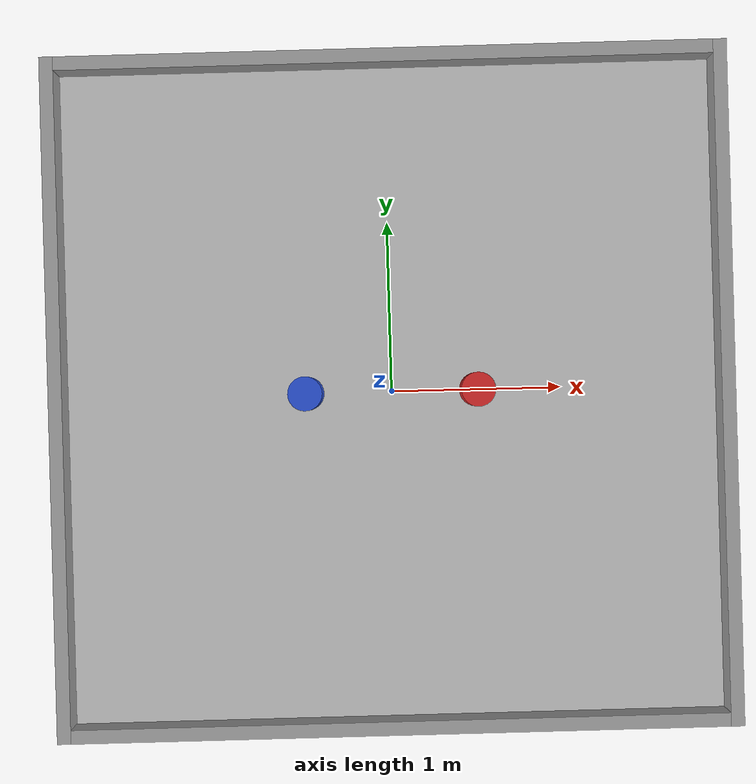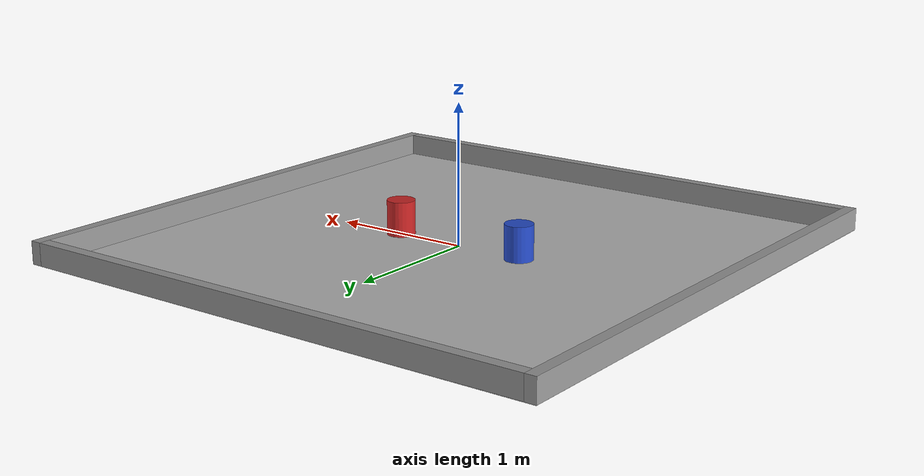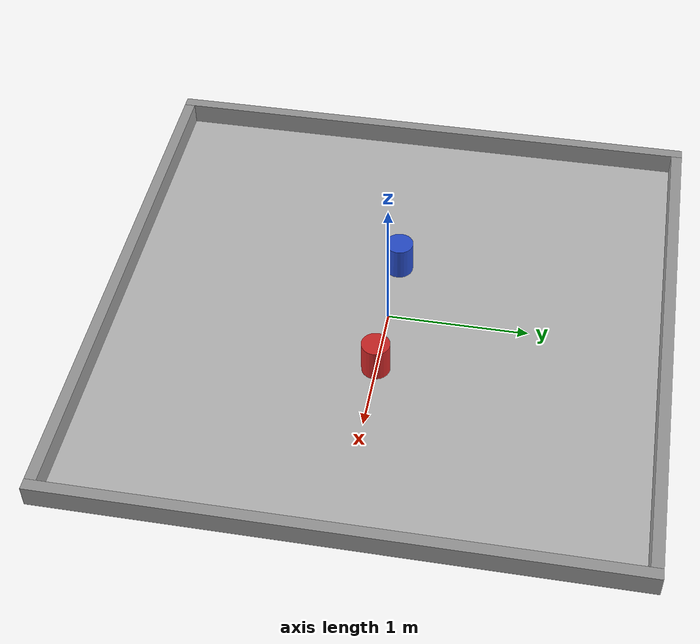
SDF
<?xml version="1.0"?>
<sdf version="1.6">
  <world name="default">

    <include>
      <uri>model://sun</uri>
    </include>

    <scene>
      <shadows>false</shadows>
    </scene>

    <gui fullscreen='0'>
      <camera name='user_camera'>
        <pose frame=''>-2.77 3.39 2.99 0 0.68 -0.88</pose>
        <view_controller>orbit</view_controller>
        <projection_type>perspective</projection_type>
      </camera>
    </gui>

    <physics type="ode">
      <real_time_update_rate>1000.0</real_time_update_rate>
      <max_step_size>0.001</max_step_size>
      <real_time_factor>1</real_time_factor>
      <ode>
        <solver>
          <type>quick</type>
          <iters>150</iters>
          <precon_iters>0</precon_iters>
          <sor>1.400000</sor>
          <use_dynamic_moi_rescaling>1</use_dynamic_moi_rescaling>
        </solver>
        <constraints>
          <cfm>0.00001</cfm>
          <erp>0.2</erp>
          <contact_max_correcting_vel>2000.000000</contact_max_correcting_vel>
          <contact_surface_layer>0.01000</contact_surface_layer>
        </constraints>
      </ode>
    </physics>

    <include>
      <uri>model://cr5_arena_walls</uri>
    </include>

    <include>
      <uri>model://task1</uri>
    </include>

  </world>
</sdf>

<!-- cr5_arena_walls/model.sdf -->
<sdf version='1.6'>
  <model name='cr5_arena_walls'>
    <pose frame=''>0 0 0.08 0 0 0</pose>
    <link name='Right_Wall'>
      <collision name='Right_Wall_Collision'>
        <geometry>
          <box>
            <size>3.84 0.08 0.16</size>
          </box>
        </geometry>
      </collision>
      <visual name='Right_Wall_Visual'>
        <geometry>
          <box>
            <size>3.84 0.08 0.16</size>
          </box>
        </geometry>
        <material>
          <script>
            <uri>file://media/materials/scripts/gazebo.material</uri>
            <name>Gazebo/Grey</name>
          </script>
          <ambient>1 1 1 1</ambient>
        </material>
      </visual>
      <pose frame=''>0 1.96 0 0 0 0</pose>
    </link>
    <link name='Back_Wall'>
      <collision name='Back_Wall_Collision'>
        <geometry>
          <box>
            <size>0.08 4.00 0.16</size>
          </box>
        </geometry>
      </collision>
      <visual name='Back_Wall_Visual'>
        <geometry>
          <box>
            <size>0.08 4.00 0.16</size>
          </box>
        </geometry>
        <material>
          <script>
            <uri>file://media/materials/scripts/gazebo.material</uri>
            <name>Gazebo/Grey</name>
          </script>
          <ambient>1 1 1 1</ambient>
        </material>
      </visual>
      <pose frame=''>-1.96 0 0 0 0 0</pose>
    </link>
    <link name='Left_Wall'>
      <collision name='Left_Wall_Collision'>
        <geometry>
          <box>
            <size>3.84 0.08 0.16</size>
          </box>
        </geometry>
      </collision>
      <visual name='Left_Wall_Visual'>
        <geometry>
          <box>
            <size>3.84 0.08 0.16</size>
          </box>
        </geometry>
        <material>
          <script>
            <uri>file://media/materials/scripts/gazebo.material</uri>
            <name>Gazebo/Grey</name>
          </script>
          <ambient>1 1 1 1</ambient>
        </material>
      </visual>
      <pose frame=''>0 -1.96 0 0 0 0</pose>
    </link>
    <link name='Front_Wall'>
      <collision name='Front_Wall_Collision'>
        <geometry>
          <box>
            <size>0.08 4.00 0.16</size>
          </box>
        </geometry>
      </collision>
      <visual name='Front_Wall_Visual'>
        <geometry>
          <box>
            <size>0.08 4.00 0.16</size>
          </box>
        </geometry>
        <material>
          <script>
            <uri>file://media/materials/scripts/gazebo.material</uri>
            <name>Gazebo/Grey</name>
          </script>
          <ambient>1 1 1 1</ambient>
        </material>
      </visual>
      <pose frame=''>1.96 0 0 0 0 0</pose>
    </link>
    <static>1</static>
  </model>
</sdf>

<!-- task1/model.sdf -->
<sdf version="1.4">
<model name="obstacle_avoidance">
  <static>true</static>
    <link name="floor">
      <collision name="collision">
        <geometry>
          <plane>
            <normal>0 0 1</normal>
            <size>4 4</size>
          </plane>
        </geometry>
        <surface>
          <friction>
            <ode>
              <mu>100</mu>
              <mu2>50</mu2>
            </ode>
          </friction>
        </surface>
      </collision>
      <visual name="visual">
        <cast_shadows>false</cast_shadows>
        <geometry>
          <plane>
            <normal>0 0 1</normal>
            <size>4 4</size>
          </plane>
        </geometry>
        <material>
          <script>
            <uri>model://task1/materials/scripts</uri>
            <uri>model://task1/materials/textures</uri>
            <name>Task1Floor/Image</name>
          </script>
        </material>
      </visual>
    </link>
    <link name='BLUE'>
      <pose frame=''>-0.5 0 0.125 0 0 0</pose>
      <collision name='coll'>
        <geometry>
          <cylinder>
            <radius>0.1</radius>
            <length>0.25</length>
          </cylinder>
        </geometry>
        <max_contacts>10</max_contacts>
        <surface>
          <bounce/>
          <friction>
            <ode/>
          </friction>
          <contact>
            <ode/>
          </contact>
        </surface>
      </collision>
      <visual name='vis'>
        <geometry>
          <cylinder>
            <radius>0.1</radius>
            <length>0.25</length>
          </cylinder>
        </geometry>
        <material>
          <script>
            <uri>file://media/materials/scripts/gazebo.material</uri>
            <name>Gazebo/Blue</name>
          </script>
        </material>
      </visual>
    </link>
    <link name='RED'>
      <pose frame=''>0.5 0 0.125 0 0 0</pose>
      <collision name='coll'>
        <geometry>
          <cylinder>
            <radius>0.1</radius>
            <length>0.25</length>
          </cylinder>
        </geometry>
        <max_contacts>10</max_contacts>
        <surface>
          <bounce/>
          <friction>
            <ode/>
          </friction>
          <contact>
            <ode/>
          </contact>
        </surface>
      </collision>
      <visual name='vis'>
        <geometry>
          <cylinder>
            <radius>0.1</radius>
            <length>0.25</length>
          </cylinder>
        </geometry>
        <material>
          <script>
            <uri>file://media/materials/scripts/gazebo.material</uri>
            <name>Gazebo/Red</name>
          </script>
        </material>
      </visual>
    </link>
  </model>
</sdf>
